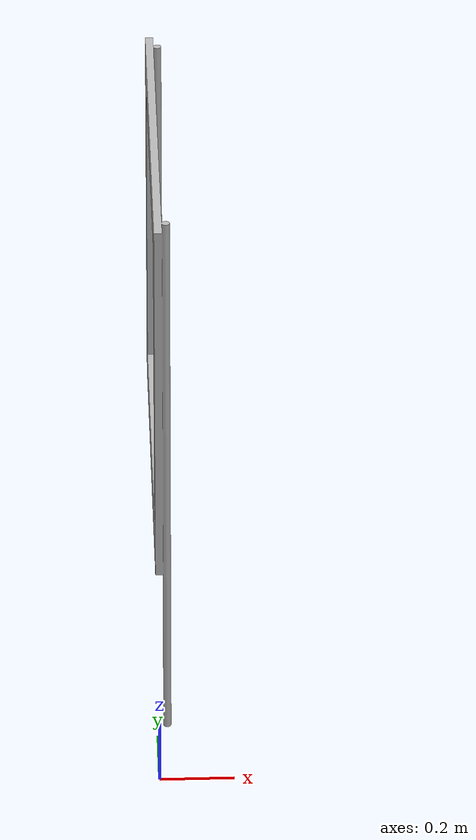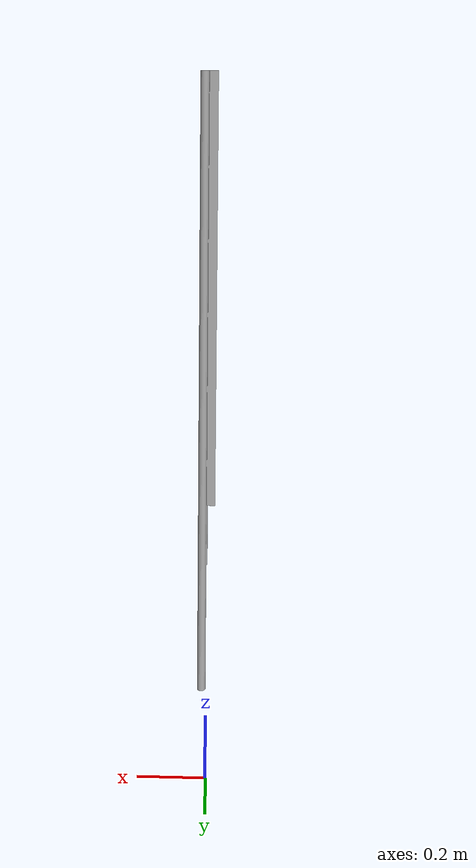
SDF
<?xml version='1.0'?>
<sdf version="1.4">
  <model name="my_model">
    <pose>0 0 0.5 0 0 0</pose>
    <static>true</static>
    <link name="link">
	<collision name="collision">
	<geometry>
          <mesh>
		<uri>model://gate/meshes/halfmeter_gate.dae</uri>
	  </mesh>
        </geometry>
	</collision>
      <visual name="visual">
        <geometry>
          <mesh>
		<uri>model://gate/meshes/halfmeter_gate.dae</uri>
	  </mesh>
        </geometry>
      </visual>
    </link>
  </model>
</sdf>
